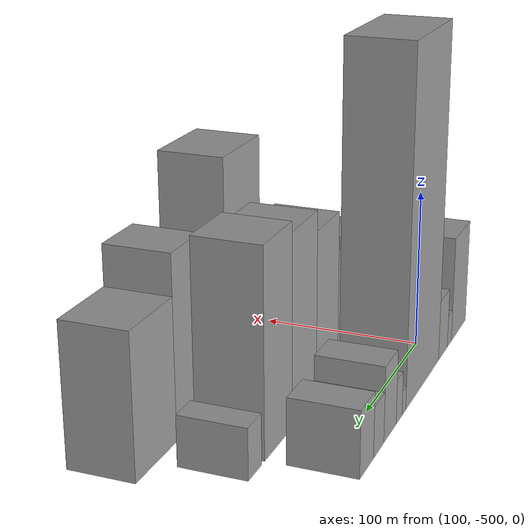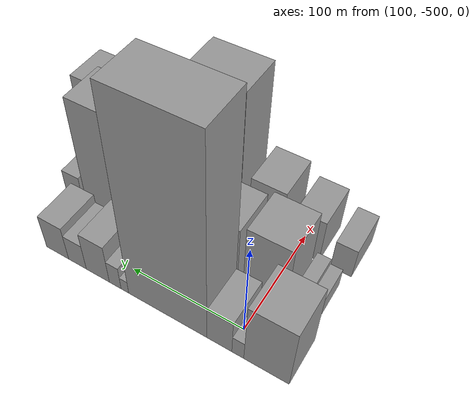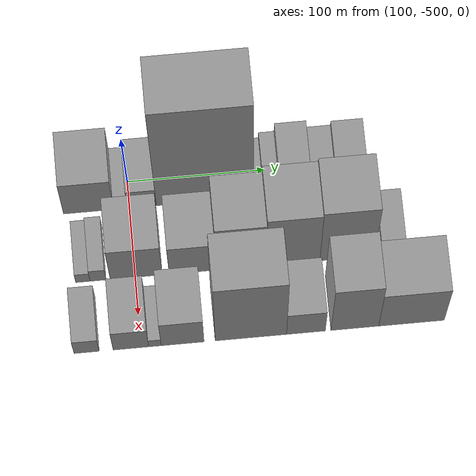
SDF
<sdf version="1.6">
 <world name="default">
  <model name="building_1">
   <static>1</static>
   <pose>100.0000 -529.7918 0 0.000000 0.000000 0.000000</pose>
   <link name="link">
    <pose>0 0 34.50 0 0 0</pose>
    <collision name="collision"><geometry><box><size>40.0000 36.4164 69.0000</size></box></geometry></collision>
    <visual name="visual">
     <cast_shadows>0</cast_shadows>
     <geometry><box><size>40.0000 36.4164 69.0000</size></box></geometry>
     <material>
      <script>
       <uri>model://grey_wall/materials/scripts</uri>
       <uri>model://grey_wall/materials/textures</uri>
       <name>vrc/grey_wall</name>
      </script>
     </material>
    </visual>
   </link>
  </model>
  <model name="building_2">
   <static>1</static>
   <pose>100.0000 -506.6692 0 0.000000 0.000000 0.000000</pose>
   <link name="link">
    <pose>0 0 10.50 0 0 0</pose>
    <collision name="collision"><geometry><box><size>40.0000 9.8289 21.0000</size></box></geometry></collision>
    <visual name="visual">
     <cast_shadows>0</cast_shadows>
     <geometry><box><size>40.0000 9.8289 21.0000</size></box></geometry>
     <material>
      <script>
       <uri>model://grey_wall/materials/scripts</uri>
       <uri>model://grey_wall/materials/textures</uri>
       <name>vrc/grey_wall</name>
      </script>
     </material>
    </visual>
   </link>
  </model>
  <model name="building_3">
   <static>1</static>
   <pose>100.0000 -491.1735 0 0.000000 0.000000 0.000000</pose>
   <link name="link">
    <pose>0 0 19.50 0 0 0</pose>
    <collision name="collision"><geometry><box><size>40.0000 21.1624 39.0000</size></box></geometry></collision>
    <visual name="visual">
     <cast_shadows>0</cast_shadows>
     <geometry><box><size>40.0000 21.1624 39.0000</size></box></geometry>
     <material>
      <script>
       <uri>model://grey_wall/materials/scripts</uri>
       <uri>model://grey_wall/materials/textures</uri>
       <name>vrc/grey_wall</name>
      </script>
     </material>
    </visual>
   </link>
  </model>
  <model name="building_4">
   <static>1</static>
   <pose>100.0000 -445.2849 0 0.000000 0.000000 0.000000</pose>
   <link name="link">
    <pose>0 0 105.00 0 0 0</pose>
    <collision name="collision"><geometry><box><size>40.0000 70.6147 210.0000</size></box></geometry></collision>
    <visual name="visual">
     <cast_shadows>0</cast_shadows>
     <geometry><box><size>40.0000 70.6147 210.0000</size></box></geometry>
     <material>
      <script>
       <uri>model://grey_wall/materials/scripts</uri>
       <uri>model://grey_wall/materials/textures</uri>
       <name>vrc/grey_wall</name>
      </script>
     </material>
    </visual>
   </link>
  </model>
  <model name="building_5">
   <static>1</static>
   <pose>100.0000 -406.3742 0 0.000000 0.000000 0.000000</pose>
   <link name="link">
    <pose>0 0 7.50 0 0 0</pose>
    <collision name="collision"><geometry><box><size>40.0000 7.2066 15.0000</size></box></geometry></collision>
    <visual name="visual">
     <cast_shadows>0</cast_shadows>
     <geometry><box><size>40.0000 7.2066 15.0000</size></box></geometry>
     <material>
      <script>
       <uri>model://grey_wall/materials/scripts</uri>
       <uri>model://grey_wall/materials/textures</uri>
       <name>vrc/grey_wall</name>
      </script>
     </material>
    </visual>
   </link>
  </model>
  <model name="building_6">
   <static>1</static>
   <pose>100.0000 -397.1257 0 0.000000 0.000000 0.000000</pose>
   <link name="link">
    <pose>0 0 13.50 0 0 0</pose>
    <collision name="collision"><geometry><box><size>40.0000 11.2906 27.0000</size></box></geometry></collision>
    <visual name="visual">
     <cast_shadows>0</cast_shadows>
     <geometry><box><size>40.0000 11.2906 27.0000</size></box></geometry>
     <material>
      <script>
       <uri>model://grey_wall/materials/scripts</uri>
       <uri>model://grey_wall/materials/textures</uri>
       <name>vrc/grey_wall</name>
      </script>
     </material>
    </visual>
   </link>
  </model>
  <model name="building_7">
   <static>1</static>
   <pose>100.0000 -380.0836 0 0.000000 0.000000 0.000000</pose>
   <link name="link">
    <pose>0 0 22.50 0 0 0</pose>
    <collision name="collision"><geometry><box><size>40.0000 22.7934 45.0000</size></box></geometry></collision>
    <visual name="visual">
     <cast_shadows>0</cast_shadows>
     <geometry><box><size>40.0000 22.7934 45.0000</size></box></geometry>
     <material>
      <script>
       <uri>model://grey_wall/materials/scripts</uri>
       <uri>model://grey_wall/materials/textures</uri>
       <name>vrc/grey_wall</name>
      </script>
     </material>
    </visual>
   </link>
  </model>
  <model name="building_8">
   <static>1</static>
   <pose>100.0000 -359.7217 0 0.000000 0.000000 0.000000</pose>
   <link name="link">
    <pose>0 0 15.00 0 0 0</pose>
    <collision name="collision"><geometry><box><size>40.0000 17.9304 30.0000</size></box></geometry></collision>
    <visual name="visual">
     <cast_shadows>0</cast_shadows>
     <geometry><box><size>40.0000 17.9304 30.0000</size></box></geometry>
     <material>
      <script>
       <uri>model://grey_wall/materials/scripts</uri>
       <uri>model://grey_wall/materials/textures</uri>
       <name>vrc/grey_wall</name>
      </script>
     </material>
    </visual>
   </link>
  </model>
  <model name="building_9">
   <static>1</static>
   <pose>100.0000 -339.2862 0 0.000000 0.000000 0.000000</pose>
   <link name="link">
    <pose>0 0 19.50 0 0 0</pose>
    <collision name="collision"><geometry><box><size>40.0000 22.9406 39.0000</size></box></geometry></collision>
    <visual name="visual">
     <cast_shadows>0</cast_shadows>
     <geometry><box><size>40.0000 22.9406 39.0000</size></box></geometry>
     <material>
      <script>
       <uri>model://grey_wall/materials/scripts</uri>
       <uri>model://grey_wall/materials/textures</uri>
       <name>vrc/grey_wall</name>
      </script>
     </material>
    </visual>
   </link>
  </model>
  <model name="building_38">
   <static>1</static>
   <pose>152.0000 -537.8394 0 0.000000 0.000000 0.000000</pose>
   <link name="link">
    <pose>0 0 10.50 0 0 0</pose>
    <collision name="collision"><geometry><box><size>40.0000 10.3213 21.0000</size></box></geometry></collision>
    <visual name="visual">
     <cast_shadows>0</cast_shadows>
     <geometry><box><size>40.0000 10.3213 21.0000</size></box></geometry>
     <material>
      <script>
       <uri>model://grey_wall/materials/scripts</uri>
       <uri>model://grey_wall/materials/textures</uri>
       <name>vrc/grey_wall</name>
      </script>
     </material>
    </visual>
   </link>
  </model>
  <model name="building_39">
   <static>1</static>
   <pose>152.0000 -526.9172 0 0.000000 0.000000 0.000000</pose>
   <link name="link">
    <pose>0 0 13.50 0 0 0</pose>
    <collision name="collision"><geometry><box><size>40.0000 11.5229 27.0000</size></box></geometry></collision>
    <visual name="visual">
     <cast_shadows>0</cast_shadows>
     <geometry><box><size>40.0000 11.5229 27.0000</size></box></geometry>
     <material>
      <script>
       <uri>model://grey_wall/materials/scripts</uri>
       <uri>model://grey_wall/materials/textures</uri>
       <name>vrc/grey_wall</name>
      </script>
     </material>
    </visual>
   </link>
  </model>
  <model name="building_40">
   <static>1</static>
   <pose>152.0000 -499.3836 0 0.000000 0.000000 0.000000</pose>
   <link name="link">
    <pose>0 0 36.00 0 0 0</pose>
    <collision name="collision"><geometry><box><size>40.0000 37.5443 72.0000</size></box></geometry></collision>
    <visual name="visual">
     <cast_shadows>0</cast_shadows>
     <geometry><box><size>40.0000 37.5443 72.0000</size></box></geometry>
     <material>
      <script>
       <uri>model://grey_wall/materials/scripts</uri>
       <uri>model://grey_wall/materials/textures</uri>
       <name>vrc/grey_wall</name>
      </script>
     </material>
    </visual>
   </link>
  </model>
  <model name="building_41">
   <static>1</static>
   <pose>152.0000 -458.7321 0 0.000000 0.000000 0.000000</pose>
   <link name="link">
    <pose>0 0 33.00 0 0 0</pose>
    <collision name="collision"><geometry><box><size>40.0000 33.7587 66.0000</size></box></geometry></collision>
    <visual name="visual">
     <cast_shadows>0</cast_shadows>
     <geometry><box><size>40.0000 33.7587 66.0000</size></box></geometry>
     <material>
      <script>
       <uri>model://grey_wall/materials/scripts</uri>
       <uri>model://grey_wall/materials/textures</uri>
       <name>vrc/grey_wall</name>
      </script>
     </material>
    </visual>
   </link>
  </model>
  <model name="building_42">
   <static>1</static>
   <pose>152.0000 -423.5592 0 0.000000 0.000000 0.000000</pose>
   <link name="link">
    <pose>0 0 51.00 0 0 0</pose>
    <collision name="collision"><geometry><box><size>40.0000 36.5873 102.0000</size></box></geometry></collision>
    <visual name="visual">
     <cast_shadows>0</cast_shadows>
     <geometry><box><size>40.0000 36.5873 102.0000</size></box></geometry>
     <material>
      <script>
       <uri>model://grey_wall/materials/scripts</uri>
       <uri>model://grey_wall/materials/textures</uri>
       <name>vrc/grey_wall</name>
      </script>
     </material>
    </visual>
   </link>
  </model>
  <model name="building_43">
   <static>1</static>
   <pose>152.0000 -386.0118 0 0.000000 0.000000 0.000000</pose>
   <link name="link">
    <pose>0 0 57.00 0 0 0</pose>
    <collision name="collision"><geometry><box><size>40.0000 38.5074 114.0000</size></box></geometry></collision>
    <visual name="visual">
     <cast_shadows>0</cast_shadows>
     <geometry><box><size>40.0000 38.5074 114.0000</size></box></geometry>
     <material>
      <script>
       <uri>model://grey_wall/materials/scripts</uri>
       <uri>model://grey_wall/materials/textures</uri>
       <name>vrc/grey_wall</name>
      </script>
     </material>
    </visual>
   </link>
  </model>
  <model name="building_44">
   <static>1</static>
   <pose>152.0000 -346.9782 0 0.000000 0.000000 0.000000</pose>
   <link name="link">
    <pose>0 0 60.00 0 0 0</pose>
    <collision name="collision"><geometry><box><size>40.0000 39.5599 120.0000</size></box></geometry></collision>
    <visual name="visual">
     <cast_shadows>0</cast_shadows>
     <geometry><box><size>40.0000 39.5599 120.0000</size></box></geometry>
     <material>
      <script>
       <uri>model://grey_wall/materials/scripts</uri>
       <uri>model://grey_wall/materials/textures</uri>
       <name>vrc/grey_wall</name>
      </script>
     </material>
    </visual>
   </link>
  </model>
  <model name="building_45">
   <static>1</static>
   <pose>152.0000 -314.3785 0 0.000000 0.000000 0.000000</pose>
   <link name="link">
    <pose>0 0 15.00 0 0 0</pose>
    <collision name="collision"><geometry><box><size>40.0000 17.6395 30.0000</size></box></geometry></collision>
    <visual name="visual">
     <cast_shadows>0</cast_shadows>
     <geometry><box><size>40.0000 17.6395 30.0000</size></box></geometry>
     <material>
      <script>
       <uri>model://grey_wall/materials/scripts</uri>
       <uri>model://grey_wall/materials/textures</uri>
       <name>vrc/grey_wall</name>
      </script>
     </material>
    </visual>
   </link>
  </model>
  <model name="building_71">
   <static>1</static>
   <pose>204.0000 -539.0254 0 0.000000 0.000000 0.000000</pose>
   <link name="link">
    <pose>0 0 16.50 0 0 0</pose>
    <collision name="collision"><geometry><box><size>40.0000 17.9493 33.0000</size></box></geometry></collision>
    <visual name="visual">
     <cast_shadows>0</cast_shadows>
     <geometry><box><size>40.0000 17.9493 33.0000</size></box></geometry>
     <material>
      <script>
       <uri>model://grey_wall/materials/scripts</uri>
       <uri>model://grey_wall/materials/textures</uri>
       <name>vrc/grey_wall</name>
      </script>
     </material>
    </visual>
   </link>
  </model>
  <model name="building_72">
   <static>1</static>
   <pose>204.0000 -507.3591 0 0.000000 0.000000 0.000000</pose>
   <link name="link">
    <pose>0 0 24.00 0 0 0</pose>
    <collision name="collision"><geometry><box><size>40.0000 25.3833 48.0000</size></box></geometry></collision>
    <visual name="visual">
     <cast_shadows>0</cast_shadows>
     <geometry><box><size>40.0000 25.3833 48.0000</size></box></geometry>
     <material>
      <script>
       <uri>model://grey_wall/materials/scripts</uri>
       <uri>model://grey_wall/materials/textures</uri>
       <name>vrc/grey_wall</name>
      </script>
     </material>
    </visual>
   </link>
  </model>
  <model name="building_73">
   <static>1</static>
   <pose>204.0000 -490.1794 0 0.000000 0.000000 0.000000</pose>
   <link name="link">
    <pose>0 0 9.00 0 0 0</pose>
    <collision name="collision"><geometry><box><size>40.0000 8.9761 18.0000</size></box></geometry></collision>
    <visual name="visual">
     <cast_shadows>0</cast_shadows>
     <geometry><box><size>40.0000 8.9761 18.0000</size></box></geometry>
     <material>
      <script>
       <uri>model://grey_wall/materials/scripts</uri>
       <uri>model://grey_wall/materials/textures</uri>
       <name>vrc/grey_wall</name>
      </script>
     </material>
    </visual>
   </link>
  </model>
  <model name="building_74">
   <static>1</static>
   <pose>204.0000 -470.3459 0 0.000000 0.000000 0.000000</pose>
   <link name="link">
    <pose>0 0 30.00 0 0 0</pose>
    <collision name="collision"><geometry><box><size>40.0000 30.6908 60.0000</size></box></geometry></collision>
    <visual name="visual">
     <cast_shadows>0</cast_shadows>
     <geometry><box><size>40.0000 30.6908 60.0000</size></box></geometry>
     <material>
      <script>
       <uri>model://grey_wall/materials/scripts</uri>
       <uri>model://grey_wall/materials/textures</uri>
       <name>vrc/grey_wall</name>
      </script>
     </material>
    </visual>
   </link>
  </model>
  <model name="building_75">
   <static>1</static>
   <pose>204.0000 -421.3926 0 0.000000 0.000000 0.000000</pose>
   <link name="link">
    <pose>0 0 70.50 0 0 0</pose>
    <collision name="collision"><geometry><box><size>40.0000 51.2158 141.0000</size></box></geometry></collision>
    <visual name="visual">
     <cast_shadows>0</cast_shadows>
     <geometry><box><size>40.0000 51.2158 141.0000</size></box></geometry>
     <material>
      <script>
       <uri>model://grey_wall/materials/scripts</uri>
       <uri>model://grey_wall/materials/textures</uri>
       <name>vrc/grey_wall</name>
      </script>
     </material>
    </visual>
   </link>
  </model>
  <model name="building_76">
   <static>1</static>
   <pose>204.0000 -381.8906 0 0.000000 0.000000 0.000000</pose>
   <link name="link">
    <pose>0 0 27.00 0 0 0</pose>
    <collision name="collision"><geometry><box><size>40.0000 27.7882 54.0000</size></box></geometry></collision>
    <visual name="visual">
     <cast_shadows>0</cast_shadows>
     <geometry><box><size>40.0000 27.7882 54.0000</size></box></geometry>
     <material>
      <script>
       <uri>model://grey_wall/materials/scripts</uri>
       <uri>model://grey_wall/materials/textures</uri>
       <name>vrc/grey_wall</name>
      </script>
     </material>
    </visual>
   </link>
  </model>
  <model name="building_77">
   <static>1</static>
   <pose>204.0000 -346.8396 0 0.000000 0.000000 0.000000</pose>
   <link name="link">
    <pose>0 0 54.00 0 0 0</pose>
    <collision name="collision"><geometry><box><size>40.0000 34.3137 108.0000</size></box></geometry></collision>
    <visual name="visual">
     <cast_shadows>0</cast_shadows>
     <geometry><box><size>40.0000 34.3137 108.0000</size></box></geometry>
     <material>
      <script>
       <uri>model://grey_wall/materials/scripts</uri>
       <uri>model://grey_wall/materials/textures</uri>
       <name>vrc/grey_wall</name>
      </script>
     </material>
    </visual>
   </link>
  </model>
  <model name="building_78">
   <static>1</static>
   <pose>204.0000 -306.0941 0 0.000000 0.000000 0.000000</pose>
   <link name="link">
    <pose>0 0 42.00 0 0 0</pose>
    <collision name="collision"><geometry><box><size>40.0000 47.1772 84.0000</size></box></geometry></collision>
    <visual name="visual">
     <cast_shadows>0</cast_shadows>
     <geometry><box><size>40.0000 47.1772 84.0000</size></box></geometry>
     <material>
      <script>
       <uri>model://grey_wall/materials/scripts</uri>
       <uri>model://grey_wall/materials/textures</uri>
       <name>vrc/grey_wall</name>
      </script>
     </material>
    </visual>
   </link>
  </model>
 </world>
</sdf>
